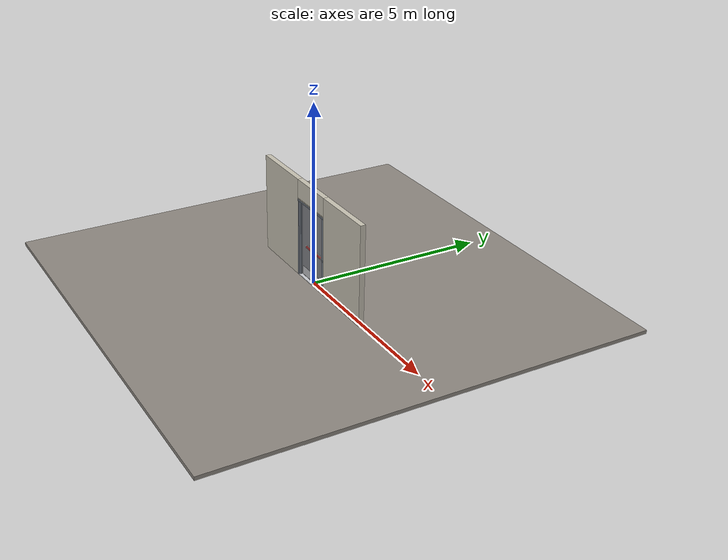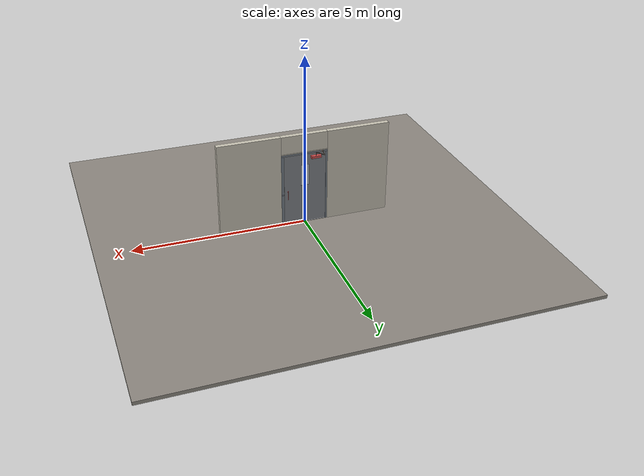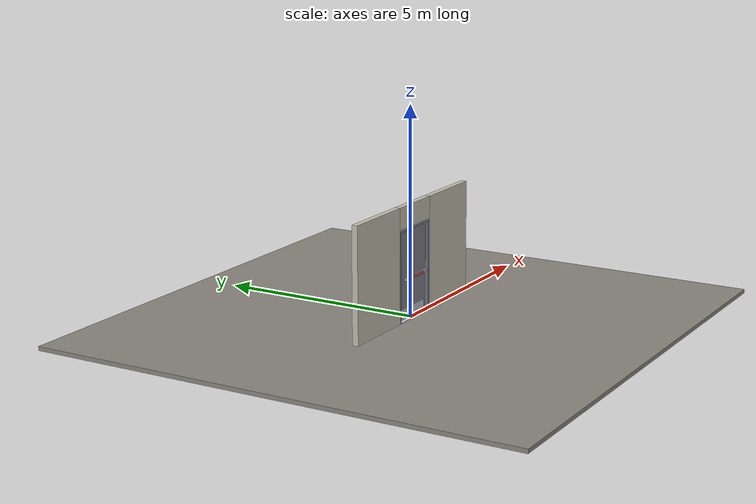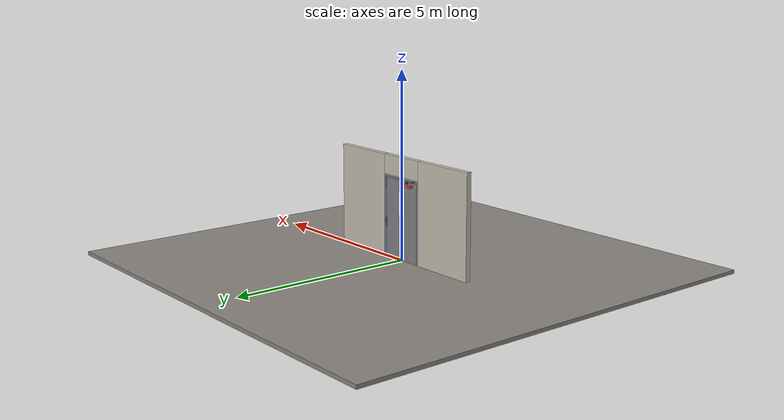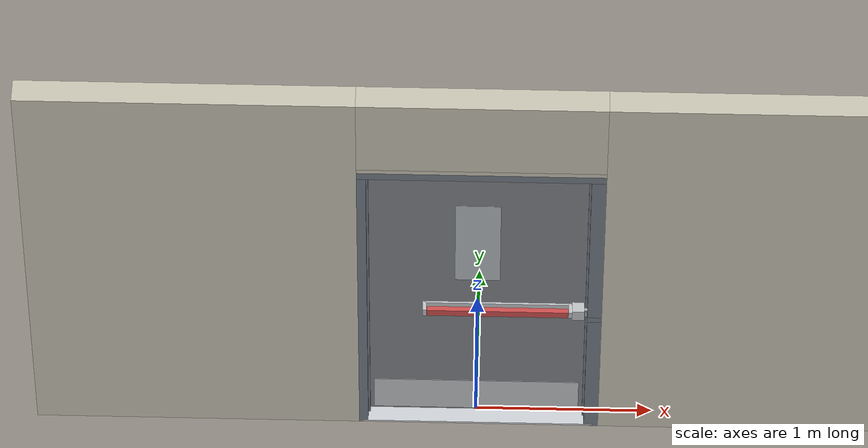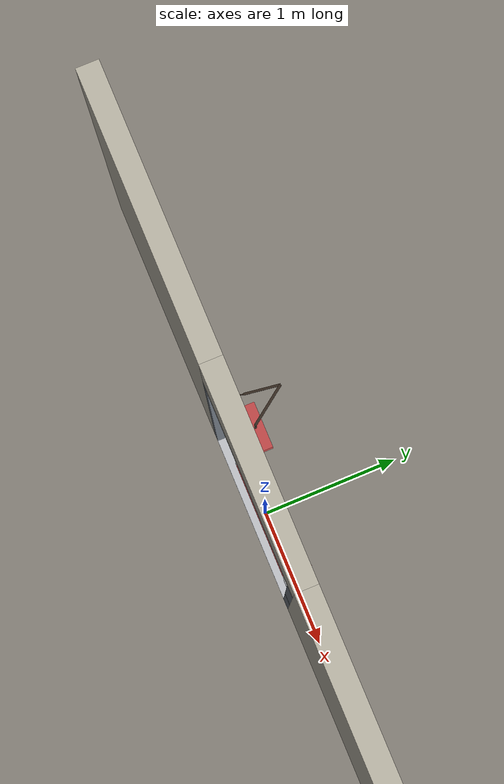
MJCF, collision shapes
<?xml version="1.0" ?>
<mujoco model="db0658_swing_single_full">
  <compiler angle="radian" meshdir="../../hardware" texturedir="../../textures" autolimits="true" inertiafromgeom="false"/>
  <option timestep="0.002" integrator="implicitfast" cone="elliptic" impratio="10" noslip_iterations="3">
    <flag multiccd="enable"/>
  </option>
  <size memory="16M"/>
  <default>
    <geom condim="4" solref="0.005 1" solimp="0.95 0.99 0.001"/>
    <joint solreflimit="0.005 1" solimplimit="0.95 0.99 0.001"/>
    <tendon solreflimit="0.005 1"/>
    <equality solref="0.002 1"/>
  </default>
  <visual>
    <headlight ambient="0.4 0.4 0.4" diffuse="0.7 0.7 0.7" specular="0.2 0.2 0.2"/>
    <quality shadowsize="4096"/>
    <map znear="0.01" zfar="60"/>
  </visual>
  <asset>
    <mesh name="closer_body_fdc4667657" file="closer_body_fdc4667657.obj"/>
    <mesh name="hinge_e22b26c0c1" file="hinge_e22b26c0c1.obj"/>
    <mesh name="hinge_jamb_e1d088f8dc" file="hinge_jamb_e1d088f8dc.obj"/>
    <mesh name="pull_f8d79d6331" file="pull_f8d79d6331.obj"/>
    <mesh name="touchbar_pad_53c3d671cc" file="touchbar_pad_53c3d671cc.obj"/>
    <material name="mat_floor" rgba="0.55 0.53 0.5 1" specular="0.2" shininess="0.15" reflectance="0"/>
    <material name="mat_wall" rgba="0.78 0.76 0.7 1" specular="0.2" shininess="0.1" reflectance="0"/>
    <material name="mat_leaf" rgba="0.5 0.51 0.53 1" specular="0.23" shininess="0.56" reflectance="0.02"/>
    <material name="mat_glass" rgba="0.9 0.93 0.95 0.6" specular="0.2" shininess="0.5" reflectance="0.1"/>
    <material name="mat_hinge" rgba="0.65 0.66 0.68 1" specular="0.74" shininess="0.5" reflectance="0.36"/>
    <material name="mat_op_stainless" rgba="0.75 0.76 0.77 1" specular="0.8" shininess="0.65" reflectance="0.4"/>
    <material name="mat_bolt" rgba="0.75 0.76 0.77 1" specular="0.8" shininess="0.65" reflectance="0.4"/>
    <material name="mat_frame" rgba="0.45 0.48 0.52 1" specular="0.32" shininess="0.6" reflectance="0.08"/>
    <material name="mat_seal" rgba="0.1 0.1 0.1 1" specular="0.2" shininess="0.1" reflectance="0"/>
    <material name="mat_threshold" rgba="0.8 0.81 0.83 1" specular="0.8" shininess="0.6" reflectance="0.4"/>
    <material name="mat_closer" rgba="0.22 0.17 0.13 1" specular="0.8" shininess="0.6" reflectance="0.4"/>
    <material name="mat_kick" rgba="0.75 0.76 0.77 1" specular="0.8" shininess="0.65" reflectance="0.4"/>
    <texture name="skybox" type="skybox" builtin="gradient" rgb1="0.6 0.7 0.85" rgb2="0.9 0.92 0.95" width="256" height="256"/>
  </asset>
  <worldbody>
    <light name="sun" pos="1.5 -2.5 4" dir="-0.3 0.5 -0.8" directional="true" diffuse="0.8 0.8 0.8" specular="0.3 0.3 0.3" castshadow="true"/>
    <light name="fill" pos="-1.5 2.5 3" dir="0.3 -0.5 -0.7" directional="true" diffuse="0.35 0.35 0.4" castshadow="false"/>
    <camera name="robot_view" pos="0 -2.681312 1.812087" xyaxes="1 0 0 0 0.26963 0.962964" fovy="52"/>
    <camera name="far_view" pos="0 2.594313 1.812087" xyaxes="-1 0 0 0 -0.26963 0.962964" fovy="52"/>
    <camera name="iso" pos="2.004737 -2.259262 2.234138" xyaxes="0.741536 0.670913 0 -0.242917 0.268487 0.932151" fovy="46"/>
    <camera name="detail_handle" pos="0.699 -0.703 1.245" xyaxes="0.97561 0.219512 0 -0.070934 0.315262 0.94635" fovy="38"/>
    <geom name="floor" type="box" size="6 6 0.05" pos="0 0 -0.05" material="mat_floor" group="0" contype="1" conaffinity="1" friction="0.8 0.005 0.0001" density="2400"/>
    <geom name="wall_left" type="box" size="0.9185 0.0725 1.3735" pos="-1.5815 -0.0435 1.3735" material="mat_wall" group="0" contype="1" conaffinity="1" friction="0.6 0.005 0.0001" density="800"/>
    <geom name="wall_right" type="box" size="0.9035 0.0725 1.3735" pos="1.5965 -0.0435 1.3735" material="mat_wall" group="0" contype="1" conaffinity="1" friction="0.6 0.005 0.0001" density="800"/>
    <geom name="wall_header" type="box" size="0.678 0.0725 0.26" pos="0.015 -0.0435 2.487" material="mat_wall" group="0" contype="1" conaffinity="1" friction="0.6 0.005 0.0001" density="800"/>
    <geom name="hinge_0_jamb" type="mesh" mesh="hinge_jamb_e1d088f8dc" pos="-0.61 0.029 0.267" quat="0 1 0 0" material="mat_hinge" group="1" contype="0" conaffinity="0" density="7850"/>
    <geom name="hinge_1_jamb" type="mesh" mesh="hinge_jamb_e1d088f8dc" pos="-0.61 0.029 1.08" quat="0 1 0 0" material="mat_hinge" group="1" contype="0" conaffinity="0" density="7850"/>
    <geom name="hinge_2_jamb" type="mesh" mesh="hinge_jamb_e1d088f8dc" pos="-0.61 0.029 1.963" quat="0 1 0 0" material="mat_hinge" group="1" contype="0" conaffinity="0" density="7850"/>
    <geom name="jamb_hinge" type="box" size="0.025 0.0725 1.0735" pos="-0.638 -0.0435 1.0735" material="mat_frame" group="0" contype="1" conaffinity="1" friction="0.6 0.005 0.0001" density="300"/>
    <geom name="strike_965_wall_n" type="box" size="0.04 0.0305 0.02" pos="0.653 -0.0855 0.965" material="mat_frame" group="0" contype="1" conaffinity="1" friction="0.6 0.005 0.0001" density="300"/>
    <geom name="strike_965_wall_p" type="box" size="0.04 0.008 0.02" pos="0.653 -0.025 0.965" material="mat_frame" group="0" contype="1" conaffinity="1" friction="0.6 0.005 0.0001" density="300"/>
    <geom name="strike_965_ramp" type="box" size="0.04 0.034482 0.02" pos="0.661281 0.0044 0.965" quat="0.989198 0 0 -0.146587" material="mat_frame" group="0" contype="1" conaffinity="1" friction="0.12 0.005 0.0001" density="300"/>
    <geom name="strike_965_back" type="box" size="0.0285 0.011 0.02" pos="0.6645 -0.044 0.965" material="mat_frame" group="0" contype="1" conaffinity="1" friction="0.6 0.005 0.0001" density="300"/>
    <geom name="jamb_strike_0" type="box" size="0.04 0.0725 0.4725" pos="0.653 -0.0435 0.4725" material="mat_frame" group="0" contype="1" conaffinity="1" friction="0.6 0.005 0.0001" density="300"/>
    <geom name="jamb_strike_1" type="box" size="0.04 0.0725 0.581" pos="0.653 -0.0435 1.566" material="mat_frame" group="0" contype="1" conaffinity="1" friction="0.6 0.005 0.0001" density="300"/>
    <geom name="jamb_head" type="box" size="0.678 0.0725 0.025" pos="0.015 -0.0435 2.172" material="mat_frame" group="0" contype="1" conaffinity="1" friction="0.6 0.005 0.0001" density="300"/>
    <geom name="head_stud" type="box" size="0.678 0.0725 0.015" pos="0.015 -0.0435 2.212" material="mat_wall" group="0" contype="1" conaffinity="1" friction="0.6 0.005 0.0001" density="500"/>
    <geom name="stop_hinge" type="box" size="0.0055 0.016 1.0735" pos="-0.6075 -0.0385 1.0735" material="mat_frame" group="0" contype="1" conaffinity="1" friction="0.6 0.005 0.0001" density="300"/>
    <geom name="stop_strike" type="box" size="0.0055 0.016 0.45875" pos="0.6075 -0.0385 0.45875" material="mat_frame" group="0" contype="1" conaffinity="1" friction="0.6 0.005 0.0001" density="300"/>
    <geom name="stop_strike_1" type="box" size="0.0055 0.016 0.56725" pos="0.6075 -0.0385 1.57975" material="mat_frame" group="0" contype="1" conaffinity="1" friction="0.6 0.005 0.0001" density="300"/>
    <geom name="stop_head" type="box" size="0.613 0.016 0.0055" pos="0 -0.0385 2.1415" material="mat_frame" group="0" contype="1" conaffinity="1" friction="0.6 0.005 0.0001" density="300"/>
    <geom name="seal_hinge" type="box" size="0.004 0.002 1.0735" pos="-0.61 -0.024 1.0735" material="mat_seal" group="1" contype="0" conaffinity="0" density="1100"/>
    <geom name="seal_strike" type="box" size="0.004 0.002 0.45875" pos="0.61 -0.024 0.45875" material="mat_seal" group="1" contype="0" conaffinity="0" density="1100"/>
    <geom name="seal_strike_1" type="box" size="0.004 0.002 0.56725" pos="0.61 -0.024 1.57975" material="mat_seal" group="1" contype="0" conaffinity="0" density="1100"/>
    <geom name="seal_head" type="box" size="0.593 0.002 0.008" pos="0 -0.024 2.135" material="mat_seal" group="1" contype="0" conaffinity="0" density="1100"/>
    <geom name="threshold" type="box" size="0.663 0.0725 0.0065" pos="0 -0.0435 0.0065" material="mat_threshold" group="0" contype="1" conaffinity="1" friction="0.5 0.005 0.0001" density="2700"/>
    <geom name="closer_bracket" type="box" size="0.03 0.012 0.014" pos="-0.513 0.041 2.177" material="mat_closer" group="1" contype="0" conaffinity="0" density="2700"/>
    <site name="approach_point" pos="0 -1.5 0" quat="1 0 0 0" size="0.05" rgba="0.2 0.9 0.2 0.5" group="4"/>
    <site name="goal_point" pos="0 1.5 0" quat="1 0 0 0" size="0.05" rgba="0.2 0.9 0.2 0.5" group="4"/>
    <site name="door_plane_center" pos="0 0 1.0735" quat="1 0 0 0" size="0.02" rgba="0.2 0.9 0.2 0.5" group="4"/>
    <body name="leaf" pos="-0.613 0 0">
      <inertial pos="0.56841 0.011773 1.206063" mass="66.643754" quat="0.536789 0.532574 0.452236 -0.472975" diaginertia="7.83352644 31.569855468 39.28006358"/>
      <joint name="leaf_hinge" type="hinge" axis="0 0 1" pos="0.003 0.029 0" limited="true" range="0 1.570796" solreflimit="0.02 1" damping="12.850995" frictionloss="1.933935" stiffness="14.998762" springref="-3.132925" armature="0.02"/>
      <geom name="leaf_slab" type="box" size="0.6095 0.022 1.063" pos="0.6125 0 1.08" material="mat_leaf" group="0" contype="1" conaffinity="1" friction="0.4 0.005 0.0001" density="1"/>
      <geom name="leaf_glass_0" type="box" size="0.125 0.0228 0.3189" pos="0.6125 0 1.5052" material="mat_glass" group="1" contype="0" conaffinity="0" density="1"/>
      <geom name="hinge_0" type="mesh" mesh="hinge_e22b26c0c1" pos="0.003 0.029 0.267" quat="0 1 0 0" material="mat_hinge" group="1" contype="0" conaffinity="0" density="7850"/>
      <geom name="hinge_1" type="mesh" mesh="hinge_e22b26c0c1" pos="0.003 0.029 1.08" quat="0 1 0 0" material="mat_hinge" group="1" contype="0" conaffinity="0" density="7850"/>
      <geom name="hinge_2" type="mesh" mesh="hinge_e22b26c0c1" pos="0.003 0.029 1.963" quat="0 1 0 0" material="mat_hinge" group="1" contype="0" conaffinity="0" density="7850"/>
      <geom name="leaf_exit_device_rail" type="box" size="0.416175 0.006 0.025" pos="0.725825 -0.028 0.965" material="mat_op_stainless" group="0" contype="1" conaffinity="1" friction="0.6 0.005 0.0001" density="3000"/>
      <geom name="leaf_exit_device_rail_end_n" type="box" size="0.01 0.0325 0.025" pos="0.31965 -0.0545 0.965" material="mat_op_stainless" group="0" contype="1" conaffinity="1" friction="0.6 0.005 0.0001" density="3000"/>
      <geom name="leaf_exit_device_rail_end_p" type="box" size="0.01 0.0325 0.025" pos="1.132 -0.0545 0.965" material="mat_op_stainless" group="0" contype="1" conaffinity="1" friction="0.6 0.005 0.0001" density="3000"/>
      <geom name="leaf_exit_device_case" type="box" size="0.034 0.034125 0.0375" pos="1.176 -0.056125 0.965" material="mat_op_stainless" group="0" contype="1" conaffinity="1" friction="0.6 0.005 0.0001" density="3000"/>
      <geom name="leaf_far_pull_p" type="mesh" mesh="pull_f8d79d6331" pos="1.132 0.022 0.965" quat="-0.707107 0.707107 0 0" material="mat_op_stainless" group="1" contype="0" conaffinity="0" density="3000"/>
      <geom name="leaf_far_pull_col_p" type="capsule" size="0.0125 0.13" pos="1.132 0.097 0.965" material="mat_op_stainless" group="3" contype="1" conaffinity="1" rgba="0.8 0.3 0.3 0.25" friction="0.7 0.01 0.0001" density="3000"/>
      <geom name="closer_body" type="mesh" mesh="closer_body_fdc4667657" pos="0.3 0.022 2.046" quat="-0.707107 0.707107 0 0" material="mat_closer" group="1" contype="0" conaffinity="0" density="2000"/>
      <geom name="closer_body_col" type="box" size="0.145 0.05 0.035" pos="0.3 0.072 2.046" material="mat_closer" group="3" contype="1" conaffinity="1" rgba="0.8 0.3 0.3 0.25" friction="0.6 0.005 0.0001" density="2000"/>
      <geom name="closer_pinion_shaft" type="cylinder" size="0.008 0.0655" pos="0.3 0.072 2.1115" material="mat_closer" group="1" contype="0" conaffinity="0" density="2700"/>
      <geom name="kick_plate_n" type="box" size="0.5795 0.0008 0.125" pos="0.6125 -0.0228 0.152" material="mat_kick" group="2" contype="0" conaffinity="0" density="7900"/>
      <site name="leaf_far_pull_grip_p" pos="1.132 0.097 0.965" quat="1 0 0 0" size="0.012" rgba="0.2 0.9 0.2 0.5" group="4"/>
      <site name="leaf_edge_mid" pos="1.222 0 1.063" quat="1 0 0 0" size="0.02" rgba="0.2 0.9 0.2 0.5" group="4"/>
      <body name="leaf_exit_device" pos="0.725825 -0.022 0.965">
        <inertial pos="0 -0.05 0" mass="6.369435" quat="0 0 0.707107 0.707107" diaginertia="0.00155255 0.328687433 0.329284568"/>
        <joint name="leaf_exit_device_slide" type="slide" axis="0 1 0" limited="true" range="0 0.016" damping="176.89909" frictionloss="0.5" stiffness="1200" springref="-0.015" armature="0.15"/>
        <geom name="leaf_exit_device_pad" type="mesh" mesh="touchbar_pad_53c3d671cc" pos="0 0 0" quat="0.707107 0.707107 0 0" material="mat_op_stainless" group="1" contype="0" conaffinity="0" density="3000"/>
        <geom name="leaf_exit_device_pad_col" type="box" size="0.393175 0.015 0.0225" pos="0 -0.05 0" material="mat_op_stainless" group="3" contype="1" conaffinity="1" rgba="0.8 0.3 0.3 0.25" friction="0.8 0.01 0.0001" density="3000"/>
        <site name="leaf_exit_device_push" pos="0 -0.065 0" quat="1 0 0 0" size="0.015" rgba="0.2 0.9 0.2 0.5" group="4"/>
      </body>
      <body name="leaf_latch_bolt" pos="1.222 -0.044 0.965">
        <inertial pos="-0.0055 0 0" mass="0.102826" quat="0.92388 -0.382683 0 0" diaginertia="0.000004365 0.000018287 0.000018287"/>
        <joint name="leaf_latch_bolt_slide" type="slide" axis="-1 0 0" limited="true" range="0 0.019" damping="2" frictionloss="0.3" stiffness="800" springref="-0.01" armature="0.1"/>
        <geom name="leaf_latch_bolt_capsule" type="capsule" size="0.0095 0.015" pos="-0.0055 0 0" quat="0.707107 0 0.707107 0" material="mat_bolt" group="0" contype="1" conaffinity="1" friction="0.2 0.005 0.0001" density="8500"/>
      </body>
      <body name="closer_arm_main" pos="0.3 0.072 2.177" quat="0.454107 0 0 0.890947">
        <inertial pos="0.14 0 0" mass="0.12096" quat="1 0 0 0" diaginertia="0.000003588 0.00079128 0.000792852"/>
        <joint name="closer_pinion" type="hinge" axis="0 0 1" limited="false" damping="0.01" armature="0.002"/>
        <geom name="closer_arm_main_geom" type="box" size="0.14 0.008 0.005" pos="0.14 0 0" material="mat_closer" group="1" contype="0" conaffinity="0" density="2700"/>
        <body name="closer_arm_fore" pos="0.28 0 0" quat="-0.373215 0 0 -0.927745">
          <inertial pos="0.128088 0 0" mass="0.076531" quat="1 0 0 0" diaginertia="0.000001771 0.000437665 0.000438201"/>
          <joint name="closer_elbow" type="hinge" axis="0 0 1" limited="false" damping="0.01" armature="0.002"/>
          <geom name="closer_arm_fore_geom" type="box" size="0.1125 0.007 0.004" pos="0.1125 0 0" material="mat_closer" group="1" contype="0" conaffinity="0" density="2700"/>
          <geom name="closer_fore_neck" type="box" size="0.0175 0.003 0.003" pos="0.2425 0 0" material="mat_closer" group="1" contype="0" conaffinity="0" density="2700"/>
          <geom name="closer_fore_pivot" type="cylinder" size="0.005 0.012" pos="0.26 0 0" material="mat_closer" group="1" contype="0" conaffinity="0" density="2700"/>
        </body>
      </body>
    </body>
  </worldbody>
  <tendon>
    <fixed name="leaf_latch_bolt_coupling" limited="true" range="0 10">
      <joint joint="leaf_latch_bolt_slide" coef="1"/>
      <joint joint="leaf_exit_device_slide" coef="-1.357143"/>
    </fixed>
  </tendon>
  <equality>
    <connect name="closer_arm_connect" body1="closer_arm_fore" body2="world" anchor="0.26 0 0" active="true"/>
  </equality>
  <contact>
    <exclude body1="closer_arm_main" body2="leaf"/>
    <exclude body1="closer_arm_fore" body2="leaf"/>
    <exclude body1="closer_arm_main" body2="closer_arm_fore"/>
  </contact>
  <sensor>
    <jointpos name="leaf_hinge_pos" joint="leaf_hinge"/>
    <jointvel name="leaf_hinge_vel" joint="leaf_hinge"/>
    <jointpos name="leaf_exit_device_slide_pos" joint="leaf_exit_device_slide"/>
    <jointvel name="leaf_exit_device_slide_vel" joint="leaf_exit_device_slide"/>
    <jointpos name="leaf_latch_bolt_slide_pos" joint="leaf_latch_bolt_slide"/>
    <jointvel name="leaf_latch_bolt_slide_vel" joint="leaf_latch_bolt_slide"/>
  </sensor>
</mujoco>
